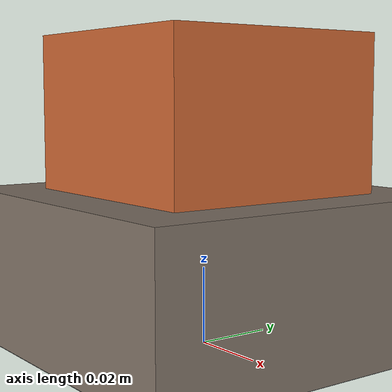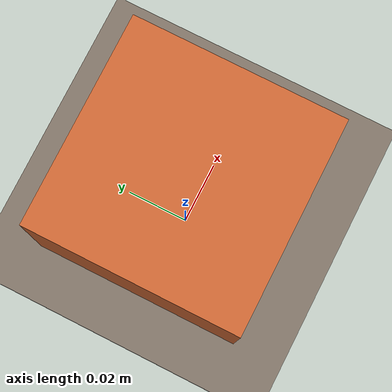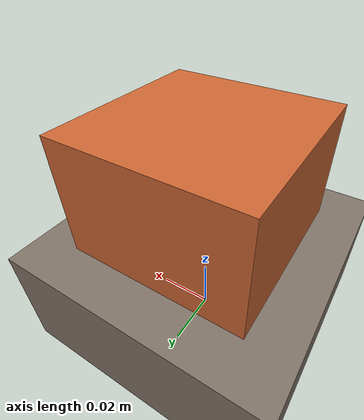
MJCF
<?xml version="1.0" encoding="utf-8"?>
<mujoco model="inspection">
  <compiler angle="radian" autolimits="true"/>
  <option timestep="0.002" gravity="0 0 -9.81"/>
  <worldbody>
    <geom name="ground" type="plane" size="1 1 0.1" condim="3"/>
    <light name="main" pos="0.5 0.5 1.2" dir="0 0 -1" directional="true"/>
    <camera name="inspection_cam" pos="0.3 0 0.25" fovy="60" mode="fixed"/>
    <body name="surface_table" pos="0 0 0"><geom name="table_geom" type="box" size="0.4 0.3 0.02" pos="0 0 0.02" rgba="0.5 0.45 0.4 1" condim="3"/></body>
    <body name="object_box" pos="0 0 0.05"><freejoint name="box_joint"/><geom name="box_geom" type="box" size="0.03 0.03 0.03" mass="0.1" rgba="0.8 0.4 0.2 1"/></body>
  </worldbody>
  <contact/>
</mujoco>
